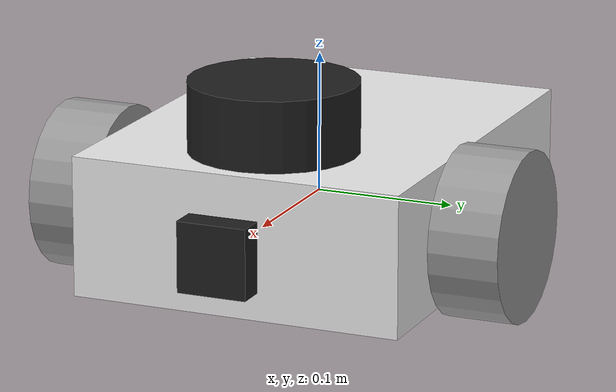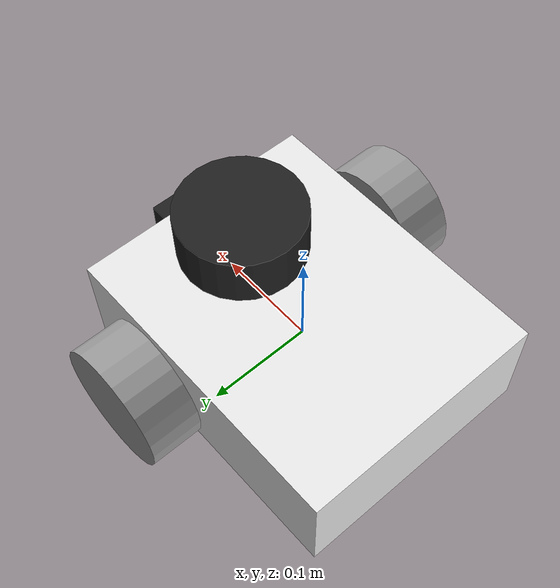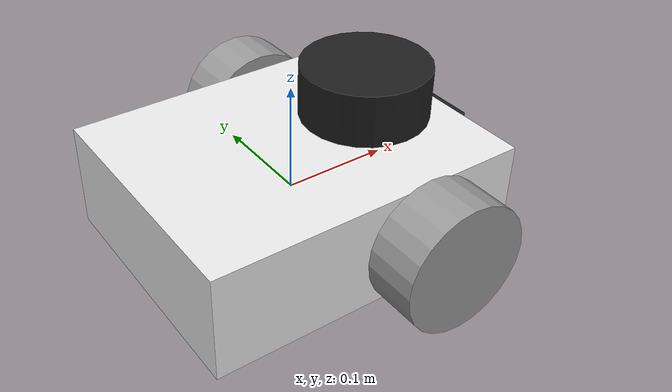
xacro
<?xml version='1.0'?>

<robot name="robot"
  xmlns:xacro="http://www.ros.org/wiki/xacro">

  <xacro:property name="PI" value="3.1415926" />

  <link name="footprint"></link>

  <link name='base'>
    <pose>0 0 0.1 0 0 0</pose>

    <inertial>
      <mass value="1.50"/>
      <origin xyz="0.0 0 0" rpy=" 0 0 0"/>
      <inertia ixx="0.00282" ixy="0" ixz="0" iyy="0.00417" iyz="0" izz="0.00615" />
    </inertial>

    <collision name='collision'>
      <origin xyz="0 0 0" rpy=" 0 0 0"/>
      <geometry>
        <box size="0.3 0.24 0.1"/>
      </geometry>
    </collision>

    <visual name='base_visual'>
      <origin xyz="0 0 0" rpy=" 0 0 0"/>
      <geometry>
        <box size="0.3 0.24 0.1"/>
      </geometry>
    </visual>

  </link>

  <xacro:macro name="wheel_and_joint" params="name x y">

    <link name="${name}_wheel">
      <inertial>
        <mass value="0.50"/>
        <origin xyz="0.0 0 0" rpy=" 0 ${PI/2} ${PI/2}"/>
        <inertia ixx="0.0001" ixy="0" ixz="0" iyy="0.0001" iyz="0" izz="0.0001" />
      </inertial>

      <visual>
        <origin xyz="0.0 0 0" rpy=" 0 ${PI/2} ${PI/2}"/>
        <geometry>
          <cylinder length="0.05" radius="0.06"/>
        </geometry>
      </visual>

      <collision>
        <origin xyz="0.0 0 0" rpy=" 0 ${PI/2} ${PI/2}"/>
        <geometry>
          <cylinder length="0.05" radius="0.06"/>
        </geometry>
      </collision>
    </link>

    <joint type="continuous" name="${name}_wheel_joint">
      <origin xyz="${x} ${y} 0" rpy="0 0 0"/>
      <child link="${name}_wheel"/>
      <parent link="base"/>
      <axis xyz="0 1 0" rpy="0 0 0"/>
      <limit effort="10000" velocity="1000"/>
      <dynamics damping="1.0" friction="1.0"/>
    </joint>

    <gazebo reference="${name}_wheel">
      <material>Gazebo/Gray</material>
      <mu1>0.1</mu1>
      <mu2>0.1</mu2>
      <kp>500000.0</kp>
      <kd>10.0</kd>
      <minDepth>0.001</minDepth>
      <maxVel>0.1</maxVel>
      <fdir1>1 0 0</fdir1>
    </gazebo>

  </xacro:macro>

  <xacro:macro name="ball_wheel_and_joint" params="name x y z">

    <link name="${name}_ball_wheel">
      <inertial>
        <mass value="0.1"/>
        <origin xyz="0.0 0 0" rpy=" 0 0 0"/>
        <inertia ixx="0.0005" ixy="0" ixz="0" iyy="0.0005" iyz="0" izz="0.0005" />
      </inertial>

      <visual>
        <origin xyz="0.0 0 0" rpy=" 0 0 0"/>
        <geometry>
          <sphere radius="0.005"/>
        </geometry>
      </visual>

      <collision>
        <origin xyz="0.0 0 0" rpy=" 0 0 0"/>
        <geometry>
          <sphere radius="0.005"/>
        </geometry>
      </collision>
    </link>

    <joint type="fixed" name="${name}_ball_wheel_joint">
      <origin xyz="${x} ${y} ${z}" rpy="0 0 0"/>
      <child link="${name}_ball_wheel"/>
      <parent link="base"/>
      <axis xyz="0 0 1" rpy="0 0 0"/>
    </joint>

    <gazebo reference="${name}_ball_wheel">
      <material>Gazebo/Gray</material>
      <mu1>0.1</mu1>
      <mu2>0.1</mu2>
      <kp>1000000.0</kp>
      <kd>100.0</kd>
      <minDepth>0.001</minDepth>
      <maxVel>1.0</maxVel>
    </gazebo>

  </xacro:macro>

  <xacro:wheel_and_joint name="front_left" x="0.05" y="0.15"/>
  <xacro:wheel_and_joint name="front_right" x="0.05" y="-0.15"/>
  <xacro:ball_wheel_and_joint name="back1" x="-0.11" y="0.1" z="-0.055"/>
  <xacro:ball_wheel_and_joint name="back2" x="-0.11" y="-0.1" z="-0.055"/>
  <link name="camera">
    <inertial>
      <mass value="0.1"/>
      <origin xyz="0.02 0.05 0.05" rpy=" 0 0 0"/>
      <inertia ixx="1e-6" ixy="0" ixz="0" iyy="1e-6" iyz="0" izz="1e-6" />
    </inertial>

    <visual name="camera_visual">
      <origin xyz="0 0 0" rpy="0 0 0" />
      <geometry>
        <box size="0.02 0.05 0.05"/>
      </geometry>
    </visual>

    <collision name="camera_colision">
      <origin xyz="0 0 0" rpy="0 0 0" />
      <geometry>
        <box size="0.02 0.05 0.05"/>
      </geometry>
    </collision>
  </link>

  <link name="vodyne">
    <inertial>
      <mass value="1e-5"/>
      <origin xyz="0 0 0" rpy=" 0 0 0"/>
      <inertia ixx="1e-6" ixy="0" ixz="0" iyy="1e-6" iyz="0" izz="1e-6" />
    </inertial>

    <visual name="vodyne_visual">
      <origin xyz="0 0 0" rpy="0 0 0" />
      <geometry>
        <cylinder length="0.05" radius="0.06"/>
      </geometry>
    </visual>

    <collision name="vodyne_colision">
      <origin xyz="0 0 0" rpy="0 0 0" />
      <geometry>
          <cylinder length="0.05" radius="0.03"/>
      </geometry>
    </collision>
  </link>

  <joint name="footprint_joint" type="fixed">
    <origin xyz="0 0 0" rpy="0 0 0" />
    <parent link="footprint"/>
    <child link="base" />
  </joint>

  <joint type="fixed" name="camera_joint">
    <origin xyz="0.175 0 0" rpy="0 0 0"/>
    <child link="camera"/>
    <parent link="base"/>
    <axis xyz="0 0 1" rpy="0 0 0"/>
  </joint>

  <joint type="fixed" name="vodyne_joint">
    <origin xyz="0.08 0 0.075" rpy="0 0 0"/>
    <child link="vodyne"/>
    <parent link="base"/>
    <axis xyz="0 0 1" rpy="0 0 0"/>
  </joint>

  <gazebo reference="base">
    <material>Gazebo/White</material>
  </gazebo>

  <gazebo reference="camera">
    <material>Gazebo/Black</material>
  </gazebo>

  <gazebo reference="vodyne">
    <material>Gazebo/Black</material>
  </gazebo>

  <!--skid_steer_drive_controller-->
  <gazebo>
    <plugin name="differential_drive_controller" filename="libgazebo_ros_diff_drive.so">
      <alwaysOn>false</alwaysOn>
      <legacyMode>false</legacyMode>
      <publishTf>true</publishTf>
      <publishWheelJointState>true</publishWheelJointState>
      <updateRate>60</updateRate>
      <leftJoint>front_left_wheel_joint</leftJoint>
      <rightJoint>front_right_wheel_joint</rightJoint>

      <wheelSeparation>0.30 </wheelSeparation>
      <wheelDiameter>0.12</wheelDiameter>
      <robotBaseFrame>footprint</robotBaseFrame>
      <torque>20</torque>
      <commandTopic>cmd_vel</commandTopic>
      <odometryTopic>odom</odometryTopic>
      <odometryFrame>odom</odometryFrame>
      <odometrySource>world</odometrySource>

      <wheelAcceleration>1</wheelAcceleration>
      <wheelTorque>10</wheelTorque>
      <rosDebugLevel>na</rosDebugLevel>

    </plugin>
  </gazebo>

  <!-- camera -->
  <gazebo reference="camera">
    <sensor type="camera" name="camera_sensor">
      <update_rate>30.0</update_rate>
      <always_on>1</always_on>

      <camera name="camera">
        <horizontal_fov>1.3962634</horizontal_fov>
        <image>
          <width>800</width>
          <height>800</height>
          <format>R8G8B8</format>
        </image>
        <clip>
          <near>0.02</near>
          <far>300</far>
        </clip>
        <distortion>
          <k1>0.0</k1>
          <k2>0.0</k2>
          <k3>0.0</k3>
          <p1>0.0</p1>
          <p2>0.0</p2>
          <center>0.5 0.5</center>
        </distortion>
      </camera>
      <plugin name="camera_controller" filename="libgazebo_ros_camera.so">
        <ros>
          <namespace>/robot</namespace>
          <argument>camera/image_raw:=/robot/camera/image</argument>
          <argument>camera/camera_info:=/robot/camera/image/camera_info</argument>
        </ros>
        <camera_name>camera</camera_name>
        <frame_name>camera</frame_name>
        <hack_baseline>0.07</hack_baseline>
      </plugin>
    </sensor>
  </gazebo>
  <gazebo reference="vodyne">
    <sensor type="ray" name="vodyne16">
      <pose>0 0 0 0 0 0</pose>
      <visualize>true</visualize>
      <update_rate>10</update_rate>
      <ray>
        <scan>
          <horizontal>
            <samples>1200</samples> <!-- Change this to 500 if gazebo keeps timing out -->
            <resolution>1</resolution>
            <min_angle>-1.0471975</min_angle>
            <max_angle>1.0471975</max_angle>
          </horizontal>
          <vertical>
            <samples>64</samples>
            <resolution>1</resolution>
            <min_angle>-0.26179938</min_angle>
            <max_angle>0.26179938</max_angle>
          </vertical>
        </scan>
        <range>
          <min>0.055</min>
          <max>100.0</max>
          <resolution>0.1</resolution>
        </range>
        <noise>
          <type>gaussian</type>
          <mean>0.00</mean>
          <stddev>0.01</stddev>
        </noise>
      </ray>
      <plugin name="gazebo_ros_laser_controller" filename="libgazebo_ros_velodyne_laser.so">
        <topicName>/scan</topicName>
        <frameName>laser</frameName>
        <min_range>0.9</min_range>
        <max_range>130.0</max_range>
        <gaussianNoise>0.0</gaussianNoise>
      </plugin>
    </sensor>
  </gazebo>

</robot>
